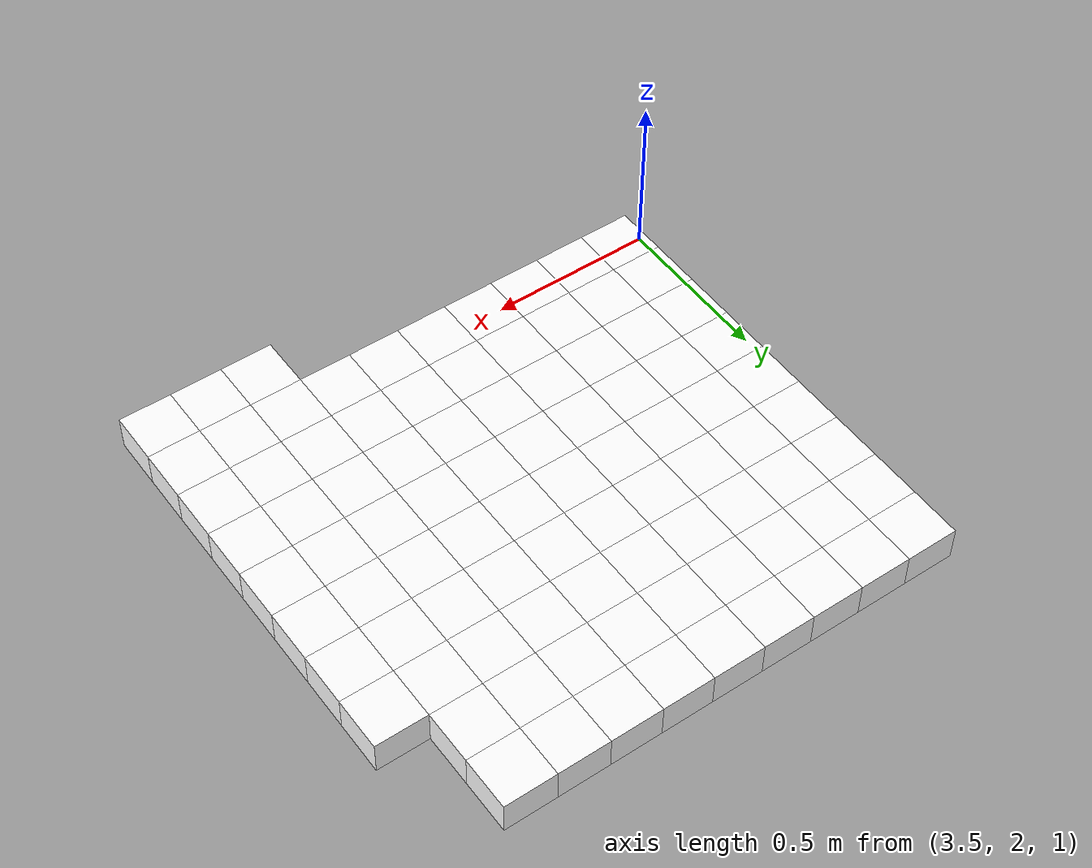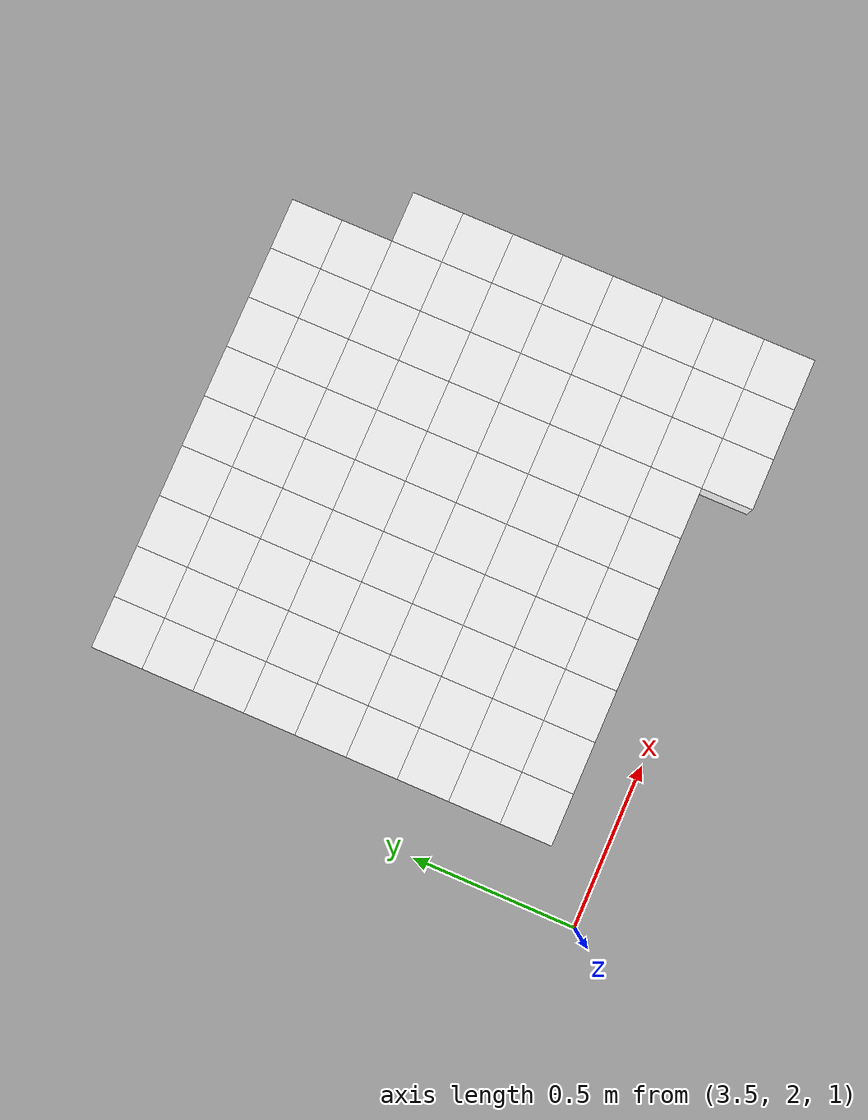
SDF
<sdf version="1.7">
 <world name="default">
  <include><uri>model://sun</uri></include>
  <model name="static_environment">
   <static>true</static>
   <link name="region_1008">
    <pose>4.825000000000003 2.0999999999999996 1.3 0.0 0.0 0.0</pose>
    <collision name="region_1008_collision">
     <geometry><box><size>0.15 0.15 0.1</size></box></geometry>
     <surface><friction><ode><mu>1.0</mu><mu2>1.0</mu2></ode></friction></surface>
    </collision>
    <visual name="region_1008_visual">
     <geometry><box><size>0.15 0.15 0.1</size></box></geometry>
     <material><ambient>1.0 1.0 1.0 1.0</ambient><diffuse>1.0 1.0 1.0 1.0</diffuse></material>
    </visual>
   </link>
   <link name="region_1009">
    <pose>4.975000000000003 2.0999999999999996 1.3 0.0 0.0 0.0</pose>
    <collision name="region_1009_collision">
     <geometry><box><size>0.15 0.15 0.1</size></box></geometry>
     <surface><friction><ode><mu>1.0</mu><mu2>1.0</mu2></ode></friction></surface>
    </collision>
    <visual name="region_1009_visual">
     <geometry><box><size>0.15 0.15 0.1</size></box></geometry>
     <material><ambient>1.0 1.0 1.0 1.0</ambient><diffuse>1.0 1.0 1.0 1.0</diffuse></material>
    </visual>
   </link>
   <link name="region_1010">
    <pose>5.1250000000000036 2.0999999999999996 1.3 0.0 0.0 0.0</pose>
    <collision name="region_1010_collision">
     <geometry><box><size>0.15 0.15 0.1</size></box></geometry>
     <surface><friction><ode><mu>1.0</mu><mu2>1.0</mu2></ode></friction></surface>
    </collision>
    <visual name="region_1010_visual">
     <geometry><box><size>0.15 0.15 0.1</size></box></geometry>
     <material><ambient>1.0 1.0 1.0 1.0</ambient><diffuse>1.0 1.0 1.0 1.0</diffuse></material>
    </visual>
   </link>
   <link name="region_1021">
    <pose>3.7750000000000004 2.2499999999999996 1.3 0.0 0.0 0.0</pose>
    <collision name="region_1021_collision">
     <geometry><box><size>0.15 0.15 0.1</size></box></geometry>
     <surface><friction><ode><mu>1.0</mu><mu2>1.0</mu2></ode></friction></surface>
    </collision>
    <visual name="region_1021_visual">
     <geometry><box><size>0.15 0.15 0.1</size></box></geometry>
     <material><ambient>1.0 1.0 1.0 1.0</ambient><diffuse>1.0 1.0 1.0 1.0</diffuse></material>
    </visual>
   </link>
   <link name="region_1022">
    <pose>3.9250000000000007 2.2499999999999996 1.3 0.0 0.0 0.0</pose>
    <collision name="region_1022_collision">
     <geometry><box><size>0.15 0.15 0.1</size></box></geometry>
     <surface><friction><ode><mu>1.0</mu><mu2>1.0</mu2></ode></friction></surface>
    </collision>
    <visual name="region_1022_visual">
     <geometry><box><size>0.15 0.15 0.1</size></box></geometry>
     <material><ambient>1.0 1.0 1.0 1.0</ambient><diffuse>1.0 1.0 1.0 1.0</diffuse></material>
    </visual>
   </link>
   <link name="region_1023">
    <pose>4.075000000000001 2.2499999999999996 1.3 0.0 0.0 0.0</pose>
    <collision name="region_1023_collision">
     <geometry><box><size>0.15 0.15 0.1</size></box></geometry>
     <surface><friction><ode><mu>1.0</mu><mu2>1.0</mu2></ode></friction></surface>
    </collision>
    <visual name="region_1023_visual">
     <geometry><box><size>0.15 0.15 0.1</size></box></geometry>
     <material><ambient>1.0 1.0 1.0 1.0</ambient><diffuse>1.0 1.0 1.0 1.0</diffuse></material>
    </visual>
   </link>
   <link name="region_1024">
    <pose>4.225000000000001 2.2499999999999996 1.3 0.0 0.0 0.0</pose>
    <collision name="region_1024_collision">
     <geometry><box><size>0.15 0.15 0.1</size></box></geometry>
     <surface><friction><ode><mu>1.0</mu><mu2>1.0</mu2></ode></friction></surface>
    </collision>
    <visual name="region_1024_visual">
     <geometry><box><size>0.15 0.15 0.1</size></box></geometry>
     <material><ambient>1.0 1.0 1.0 1.0</ambient><diffuse>1.0 1.0 1.0 1.0</diffuse></material>
    </visual>
   </link>
   <link name="region_1025">
    <pose>4.375000000000002 2.2499999999999996 1.3 0.0 0.0 0.0</pose>
    <collision name="region_1025_collision">
     <geometry><box><size>0.15 0.15 0.1</size></box></geometry>
     <surface><friction><ode><mu>1.0</mu><mu2>1.0</mu2></ode></friction></surface>
    </collision>
    <visual name="region_1025_visual">
     <geometry><box><size>0.15 0.15 0.1</size></box></geometry>
     <material><ambient>1.0 1.0 1.0 1.0</ambient><diffuse>1.0 1.0 1.0 1.0</diffuse></material>
    </visual>
   </link>
   <link name="region_1026">
    <pose>4.525000000000002 2.2499999999999996 1.3 0.0 0.0 0.0</pose>
    <collision name="region_1026_collision">
     <geometry><box><size>0.15 0.15 0.1</size></box></geometry>
     <surface><friction><ode><mu>1.0</mu><mu2>1.0</mu2></ode></friction></surface>
    </collision>
    <visual name="region_1026_visual">
     <geometry><box><size>0.15 0.15 0.1</size></box></geometry>
     <material><ambient>1.0 1.0 1.0 1.0</ambient><diffuse>1.0 1.0 1.0 1.0</diffuse></material>
    </visual>
   </link>
   <link name="region_1027">
    <pose>4.6750000000000025 2.2499999999999996 1.3 0.0 0.0 0.0</pose>
    <collision name="region_1027_collision">
     <geometry><box><size>0.15 0.15 0.1</size></box></geometry>
     <surface><friction><ode><mu>1.0</mu><mu2>1.0</mu2></ode></friction></surface>
    </collision>
    <visual name="region_1027_visual">
     <geometry><box><size>0.15 0.15 0.1</size></box></geometry>
     <material><ambient>1.0 1.0 1.0 1.0</ambient><diffuse>1.0 1.0 1.0 1.0</diffuse></material>
    </visual>
   </link>
   <link name="region_1028">
    <pose>4.825000000000003 2.2499999999999996 1.3 0.0 0.0 0.0</pose>
    <collision name="region_1028_collision">
     <geometry><box><size>0.15 0.15 0.1</size></box></geometry>
     <surface><friction><ode><mu>1.0</mu><mu2>1.0</mu2></ode></friction></surface>
    </collision>
    <visual name="region_1028_visual">
     <geometry><box><size>0.15 0.15 0.1</size></box></geometry>
     <material><ambient>1.0 1.0 1.0 1.0</ambient><diffuse>1.0 1.0 1.0 1.0</diffuse></material>
    </visual>
   </link>
   <link name="region_1029">
    <pose>4.975000000000003 2.2499999999999996 1.3 0.0 0.0 0.0</pose>
    <collision name="region_1029_collision">
     <geometry><box><size>0.15 0.15 0.1</size></box></geometry>
     <surface><friction><ode><mu>1.0</mu><mu2>1.0</mu2></ode></friction></surface>
    </collision>
    <visual name="region_1029_visual">
     <geometry><box><size>0.15 0.15 0.1</size></box></geometry>
     <material><ambient>1.0 1.0 1.0 1.0</ambient><diffuse>1.0 1.0 1.0 1.0</diffuse></material>
    </visual>
   </link>
   <link name="region_1030">
    <pose>5.1250000000000036 2.2499999999999996 1.3 0.0 0.0 0.0</pose>
    <collision name="region_1030_collision">
     <geometry><box><size>0.15 0.15 0.1</size></box></geometry>
     <surface><friction><ode><mu>1.0</mu><mu2>1.0</mu2></ode></friction></surface>
    </collision>
    <visual name="region_1030_visual">
     <geometry><box><size>0.15 0.15 0.1</size></box></geometry>
     <material><ambient>1.0 1.0 1.0 1.0</ambient><diffuse>1.0 1.0 1.0 1.0</diffuse></material>
    </visual>
   </link>
   <link name="region_1041">
    <pose>3.7750000000000004 2.3999999999999995 1.3 0.0 0.0 0.0</pose>
    <collision name="region_1041_collision">
     <geometry><box><size>0.15 0.15 0.1</size></box></geometry>
     <surface><friction><ode><mu>1.0</mu><mu2>1.0</mu2></ode></friction></surface>
    </collision>
    <visual name="region_1041_visual">
     <geometry><box><size>0.15 0.15 0.1</size></box></geometry>
     <material><ambient>1.0 1.0 1.0 1.0</ambient><diffuse>1.0 1.0 1.0 1.0</diffuse></material>
    </visual>
   </link>
   <link name="region_1042">
    <pose>3.9250000000000007 2.3999999999999995 1.3 0.0 0.0 0.0</pose>
    <collision name="region_1042_collision">
     <geometry><box><size>0.15 0.15 0.1</size></box></geometry>
     <surface><friction><ode><mu>1.0</mu><mu2>1.0</mu2></ode></friction></surface>
    </collision>
    <visual name="region_1042_visual">
     <geometry><box><size>0.15 0.15 0.1</size></box></geometry>
     <material><ambient>1.0 1.0 1.0 1.0</ambient><diffuse>1.0 1.0 1.0 1.0</diffuse></material>
    </visual>
   </link>
   <link name="region_1043">
    <pose>4.075000000000001 2.3999999999999995 1.3 0.0 0.0 0.0</pose>
    <collision name="region_1043_collision">
     <geometry><box><size>0.15 0.15 0.1</size></box></geometry>
     <surface><friction><ode><mu>1.0</mu><mu2>1.0</mu2></ode></friction></surface>
    </collision>
    <visual name="region_1043_visual">
     <geometry><box><size>0.15 0.15 0.1</size></box></geometry>
     <material><ambient>1.0 1.0 1.0 1.0</ambient><diffuse>1.0 1.0 1.0 1.0</diffuse></material>
    </visual>
   </link>
   <link name="region_1044">
    <pose>4.225000000000001 2.3999999999999995 1.3 0.0 0.0 0.0</pose>
    <collision name="region_1044_collision">
     <geometry><box><size>0.15 0.15 0.1</size></box></geometry>
     <surface><friction><ode><mu>1.0</mu><mu2>1.0</mu2></ode></friction></surface>
    </collision>
    <visual name="region_1044_visual">
     <geometry><box><size>0.15 0.15 0.1</size></box></geometry>
     <material><ambient>1.0 1.0 1.0 1.0</ambient><diffuse>1.0 1.0 1.0 1.0</diffuse></material>
    </visual>
   </link>
   <link name="region_1045">
    <pose>4.375000000000002 2.3999999999999995 1.3 0.0 0.0 0.0</pose>
    <collision name="region_1045_collision">
     <geometry><box><size>0.15 0.15 0.1</size></box></geometry>
     <surface><friction><ode><mu>1.0</mu><mu2>1.0</mu2></ode></friction></surface>
    </collision>
    <visual name="region_1045_visual">
     <geometry><box><size>0.15 0.15 0.1</size></box></geometry>
     <material><ambient>1.0 1.0 1.0 1.0</ambient><diffuse>1.0 1.0 1.0 1.0</diffuse></material>
    </visual>
   </link>
   <link name="region_1046">
    <pose>4.525000000000002 2.3999999999999995 1.3 0.0 0.0 0.0</pose>
    <collision name="region_1046_collision">
     <geometry><box><size>0.15 0.15 0.1</size></box></geometry>
     <surface><friction><ode><mu>1.0</mu><mu2>1.0</mu2></ode></friction></surface>
    </collision>
    <visual name="region_1046_visual">
     <geometry><box><size>0.15 0.15 0.1</size></box></geometry>
     <material><ambient>1.0 1.0 1.0 1.0</ambient><diffuse>1.0 1.0 1.0 1.0</diffuse></material>
    </visual>
   </link>
   <link name="region_1047">
    <pose>4.6750000000000025 2.3999999999999995 1.3 0.0 0.0 0.0</pose>
    <collision name="region_1047_collision">
     <geometry><box><size>0.15 0.15 0.1</size></box></geometry>
     <surface><friction><ode><mu>1.0</mu><mu2>1.0</mu2></ode></friction></surface>
    </collision>
    <visual name="region_1047_visual">
     <geometry><box><size>0.15 0.15 0.1</size></box></geometry>
     <material><ambient>1.0 1.0 1.0 1.0</ambient><diffuse>1.0 1.0 1.0 1.0</diffuse></material>
    </visual>
   </link>
   <link name="region_1048">
    <pose>4.825000000000003 2.3999999999999995 1.3 0.0 0.0 0.0</pose>
    <collision name="region_1048_collision">
     <geometry><box><size>0.15 0.15 0.1</size></box></geometry>
     <surface><friction><ode><mu>1.0</mu><mu2>1.0</mu2></ode></friction></surface>
    </collision>
    <visual name="region_1048_visual">
     <geometry><box><size>0.15 0.15 0.1</size></box></geometry>
     <material><ambient>1.0 1.0 1.0 1.0</ambient><diffuse>1.0 1.0 1.0 1.0</diffuse></material>
    </visual>
   </link>
   <link name="region_1049">
    <pose>4.975000000000003 2.3999999999999995 1.3 0.0 0.0 0.0</pose>
    <collision name="region_1049_collision">
     <geometry><box><size>0.15 0.15 0.1</size></box></geometry>
     <surface><friction><ode><mu>1.0</mu><mu2>1.0</mu2></ode></friction></surface>
    </collision>
    <visual name="region_1049_visual">
     <geometry><box><size>0.15 0.15 0.1</size></box></geometry>
     <material><ambient>1.0 1.0 1.0 1.0</ambient><diffuse>1.0 1.0 1.0 1.0</diffuse></material>
    </visual>
   </link>
   <link name="region_1050">
    <pose>5.1250000000000036 2.3999999999999995 1.3 0.0 0.0 0.0</pose>
    <collision name="region_1050_collision">
     <geometry><box><size>0.15 0.15 0.1</size></box></geometry>
     <surface><friction><ode><mu>1.0</mu><mu2>1.0</mu2></ode></friction></surface>
    </collision>
    <visual name="region_1050_visual">
     <geometry><box><size>0.15 0.15 0.1</size></box></geometry>
     <material><ambient>1.0 1.0 1.0 1.0</ambient><diffuse>1.0 1.0 1.0 1.0</diffuse></material>
    </visual>
   </link>
   <link name="region_1061">
    <pose>3.7750000000000004 2.5499999999999994 1.3 0.0 0.0 0.0</pose>
    <collision name="region_1061_collision">
     <geometry><box><size>0.15 0.15 0.1</size></box></geometry>
     <surface><friction><ode><mu>1.0</mu><mu2>1.0</mu2></ode></friction></surface>
    </collision>
    <visual name="region_1061_visual">
     <geometry><box><size>0.15 0.15 0.1</size></box></geometry>
     <material><ambient>1.0 1.0 1.0 1.0</ambient><diffuse>1.0 1.0 1.0 1.0</diffuse></material>
    </visual>
   </link>
   <link name="region_1062">
    <pose>3.9250000000000007 2.5499999999999994 1.3 0.0 0.0 0.0</pose>
    <collision name="region_1062_collision">
     <geometry><box><size>0.15 0.15 0.1</size></box></geometry>
     <surface><friction><ode><mu>1.0</mu><mu2>1.0</mu2></ode></friction></surface>
    </collision>
    <visual name="region_1062_visual">
     <geometry><box><size>0.15 0.15 0.1</size></box></geometry>
     <material><ambient>1.0 1.0 1.0 1.0</ambient><diffuse>1.0 1.0 1.0 1.0</diffuse></material>
    </visual>
   </link>
   <link name="region_1063">
    <pose>4.075000000000001 2.5499999999999994 1.3 0.0 0.0 0.0</pose>
    <collision name="region_1063_collision">
     <geometry><box><size>0.15 0.15 0.1</size></box></geometry>
     <surface><friction><ode><mu>1.0</mu><mu2>1.0</mu2></ode></friction></surface>
    </collision>
    <visual name="region_1063_visual">
     <geometry><box><size>0.15 0.15 0.1</size></box></geometry>
     <material><ambient>1.0 1.0 1.0 1.0</ambient><diffuse>1.0 1.0 1.0 1.0</diffuse></material>
    </visual>
   </link>
   <link name="region_1064">
    <pose>4.225000000000001 2.5499999999999994 1.3 0.0 0.0 0.0</pose>
    <collision name="region_1064_collision">
     <geometry><box><size>0.15 0.15 0.1</size></box></geometry>
     <surface><friction><ode><mu>1.0</mu><mu2>1.0</mu2></ode></friction></surface>
    </collision>
    <visual name="region_1064_visual">
     <geometry><box><size>0.15 0.15 0.1</size></box></geometry>
     <material><ambient>1.0 1.0 1.0 1.0</ambient><diffuse>1.0 1.0 1.0 1.0</diffuse></material>
    </visual>
   </link>
   <link name="region_1065">
    <pose>4.375000000000002 2.5499999999999994 1.3 0.0 0.0 0.0</pose>
    <collision name="region_1065_collision">
     <geometry><box><size>0.15 0.15 0.1</size></box></geometry>
     <surface><friction><ode><mu>1.0</mu><mu2>1.0</mu2></ode></friction></surface>
    </collision>
    <visual name="region_1065_visual">
     <geometry><box><size>0.15 0.15 0.1</size></box></geometry>
     <material><ambient>1.0 1.0 1.0 1.0</ambient><diffuse>1.0 1.0 1.0 1.0</diffuse></material>
    </visual>
   </link>
   <link name="region_1066">
    <pose>4.525000000000002 2.5499999999999994 1.3 0.0 0.0 0.0</pose>
    <collision name="region_1066_collision">
     <geometry><box><size>0.15 0.15 0.1</size></box></geometry>
     <surface><friction><ode><mu>1.0</mu><mu2>1.0</mu2></ode></friction></surface>
    </collision>
    <visual name="region_1066_visual">
     <geometry><box><size>0.15 0.15 0.1</size></box></geometry>
     <material><ambient>1.0 1.0 1.0 1.0</ambient><diffuse>1.0 1.0 1.0 1.0</diffuse></material>
    </visual>
   </link>
   <link name="region_1067">
    <pose>4.6750000000000025 2.5499999999999994 1.3 0.0 0.0 0.0</pose>
    <collision name="region_1067_collision">
     <geometry><box><size>0.15 0.15 0.1</size></box></geometry>
     <surface><friction><ode><mu>1.0</mu><mu2>1.0</mu2></ode></friction></surface>
    </collision>
    <visual name="region_1067_visual">
     <geometry><box><size>0.15 0.15 0.1</size></box></geometry>
     <material><ambient>1.0 1.0 1.0 1.0</ambient><diffuse>1.0 1.0 1.0 1.0</diffuse></material>
    </visual>
   </link>
   <link name="region_1068">
    <pose>4.825000000000003 2.5499999999999994 1.3 0.0 0.0 0.0</pose>
    <collision name="region_1068_collision">
     <geometry><box><size>0.15 0.15 0.1</size></box></geometry>
     <surface><friction><ode><mu>1.0</mu><mu2>1.0</mu2></ode></friction></surface>
    </collision>
    <visual name="region_1068_visual">
     <geometry><box><size>0.15 0.15 0.1</size></box></geometry>
     <material><ambient>1.0 1.0 1.0 1.0</ambient><diffuse>1.0 1.0 1.0 1.0</diffuse></material>
    </visual>
   </link>
   <link name="region_1069">
    <pose>4.975000000000003 2.5499999999999994 1.3 0.0 0.0 0.0</pose>
    <collision name="region_1069_collision">
     <geometry><box><size>0.15 0.15 0.1</size></box></geometry>
     <surface><friction><ode><mu>1.0</mu><mu2>1.0</mu2></ode></friction></surface>
    </collision>
    <visual name="region_1069_visual">
     <geometry><box><size>0.15 0.15 0.1</size></box></geometry>
     <material><ambient>1.0 1.0 1.0 1.0</ambient><diffuse>1.0 1.0 1.0 1.0</diffuse></material>
    </visual>
   </link>
   <link name="region_1070">
    <pose>5.1250000000000036 2.5499999999999994 1.3 0.0 0.0 0.0</pose>
    <collision name="region_1070_collision">
     <geometry><box><size>0.15 0.15 0.1</size></box></geometry>
     <surface><friction><ode><mu>1.0</mu><mu2>1.0</mu2></ode></friction></surface>
    </collision>
    <visual name="region_1070_visual">
     <geometry><box><size>0.15 0.15 0.1</size></box></geometry>
     <material><ambient>1.0 1.0 1.0 1.0</ambient><diffuse>1.0 1.0 1.0 1.0</diffuse></material>
    </visual>
   </link>
   <link name="region_1081">
    <pose>3.7750000000000004 2.6999999999999997 1.3 0.0 0.0 0.0</pose>
    <collision name="region_1081_collision">
     <geometry><box><size>0.15 0.15 0.1</size></box></geometry>
     <surface><friction><ode><mu>1.0</mu><mu2>1.0</mu2></ode></friction></surface>
    </collision>
    <visual name="region_1081_visual">
     <geometry><box><size>0.15 0.15 0.1</size></box></geometry>
     <material><ambient>1.0 1.0 1.0 1.0</ambient><diffuse>1.0 1.0 1.0 1.0</diffuse></material>
    </visual>
   </link>
   <link name="region_1082">
    <pose>3.9250000000000007 2.6999999999999997 1.3 0.0 0.0 0.0</pose>
    <collision name="region_1082_collision">
     <geometry><box><size>0.15 0.15 0.1</size></box></geometry>
     <surface><friction><ode><mu>1.0</mu><mu2>1.0</mu2></ode></friction></surface>
    </collision>
    <visual name="region_1082_visual">
     <geometry><box><size>0.15 0.15 0.1</size></box></geometry>
     <material><ambient>1.0 1.0 1.0 1.0</ambient><diffuse>1.0 1.0 1.0 1.0</diffuse></material>
    </visual>
   </link>
   <link name="region_1083">
    <pose>4.075000000000001 2.6999999999999997 1.3 0.0 0.0 0.0</pose>
    <collision name="region_1083_collision">
     <geometry><box><size>0.15 0.15 0.1</size></box></geometry>
     <surface><friction><ode><mu>1.0</mu><mu2>1.0</mu2></ode></friction></surface>
    </collision>
    <visual name="region_1083_visual">
     <geometry><box><size>0.15 0.15 0.1</size></box></geometry>
     <material><ambient>1.0 1.0 1.0 1.0</ambient><diffuse>1.0 1.0 1.0 1.0</diffuse></material>
    </visual>
   </link>
   <link name="region_1084">
    <pose>4.225000000000001 2.6999999999999997 1.3 0.0 0.0 0.0</pose>
    <collision name="region_1084_collision">
     <geometry><box><size>0.15 0.15 0.1</size></box></geometry>
     <surface><friction><ode><mu>1.0</mu><mu2>1.0</mu2></ode></friction></surface>
    </collision>
    <visual name="region_1084_visual">
     <geometry><box><size>0.15 0.15 0.1</size></box></geometry>
     <material><ambient>1.0 1.0 1.0 1.0</ambient><diffuse>1.0 1.0 1.0 1.0</diffuse></material>
    </visual>
   </link>
   <link name="region_1085">
    <pose>4.375000000000002 2.6999999999999997 1.3 0.0 0.0 0.0</pose>
    <collision name="region_1085_collision">
     <geometry><box><size>0.15 0.15 0.1</size></box></geometry>
     <surface><friction><ode><mu>1.0</mu><mu2>1.0</mu2></ode></friction></surface>
    </collision>
    <visual name="region_1085_visual">
     <geometry><box><size>0.15 0.15 0.1</size></box></geometry>
     <material><ambient>1.0 1.0 1.0 1.0</ambient><diffuse>1.0 1.0 1.0 1.0</diffuse></material>
    </visual>
   </link>
   <link name="region_1086">
    <pose>4.525000000000002 2.6999999999999997 1.3 0.0 0.0 0.0</pose>
    <collision name="region_1086_collision">
     <geometry><box><size>0.15 0.15 0.1</size></box></geometry>
     <surface><friction><ode><mu>1.0</mu><mu2>1.0</mu2></ode></friction></surface>
    </collision>
    <visual name="region_1086_visual">
     <geometry><box><size>0.15 0.15 0.1</size></box></geometry>
     <material><ambient>1.0 1.0 1.0 1.0</ambient><diffuse>1.0 1.0 1.0 1.0</diffuse></material>
    </visual>
   </link>
   <link name="region_1087">
    <pose>4.6750000000000025 2.6999999999999997 1.3 0.0 0.0 0.0</pose>
    <collision name="region_1087_collision">
     <geometry><box><size>0.15 0.15 0.1</size></box></geometry>
     <surface><friction><ode><mu>1.0</mu><mu2>1.0</mu2></ode></friction></surface>
    </collision>
    <visual name="region_1087_visual">
     <geometry><box><size>0.15 0.15 0.1</size></box></geometry>
     <material><ambient>1.0 1.0 1.0 1.0</ambient><diffuse>1.0 1.0 1.0 1.0</diffuse></material>
    </visual>
   </link>
   <link name="region_1088">
    <pose>4.825000000000003 2.6999999999999997 1.3 0.0 0.0 0.0</pose>
    <collision name="region_1088_collision">
     <geometry><box><size>0.15 0.15 0.1</size></box></geometry>
     <surface><friction><ode><mu>1.0</mu><mu2>1.0</mu2></ode></friction></surface>
    </collision>
    <visual name="region_1088_visual">
     <geometry><box><size>0.15 0.15 0.1</size></box></geometry>
     <material><ambient>1.0 1.0 1.0 1.0</ambient><diffuse>1.0 1.0 1.0 1.0</diffuse></material>
    </visual>
   </link>
   <link name="region_1089">
    <pose>4.975000000000003 2.6999999999999997 1.3 0.0 0.0 0.0</pose>
    <collision name="region_1089_collision">
     <geometry><box><size>0.15 0.15 0.1</size></box></geometry>
     <surface><friction><ode><mu>1.0</mu><mu2>1.0</mu2></ode></friction></surface>
    </collision>
    <visual name="region_1089_visual">
     <geometry><box><size>0.15 0.15 0.1</size></box></geometry>
     <material><ambient>1.0 1.0 1.0 1.0</ambient><diffuse>1.0 1.0 1.0 1.0</diffuse></material>
    </visual>
   </link>
   <link name="region_1090">
    <pose>5.1250000000000036 2.6999999999999997 1.3 0.0 0.0 0.0</pose>
    <collision name="region_1090_collision">
     <geometry><box><size>0.15 0.15 0.1</size></box></geometry>
     <surface><friction><ode><mu>1.0</mu><mu2>1.0</mu2></ode></friction></surface>
    </collision>
    <visual name="region_1090_visual">
     <geometry><box><size>0.15 0.15 0.1</size></box></geometry>
     <material><ambient>1.0 1.0 1.0 1.0</ambient><diffuse>1.0 1.0 1.0 1.0</diffuse></material>
    </visual>
   </link>
   <link name="region_1101">
    <pose>3.7750000000000004 2.8499999999999996 1.3 0.0 0.0 0.0</pose>
    <collision name="region_1101_collision">
     <geometry><box><size>0.15 0.15 0.1</size></box></geometry>
     <surface><friction><ode><mu>1.0</mu><mu2>1.0</mu2></ode></friction></surface>
    </collision>
    <visual name="region_1101_visual">
     <geometry><box><size>0.15 0.15 0.1</size></box></geometry>
     <material><ambient>1.0 1.0 1.0 1.0</ambient><diffuse>1.0 1.0 1.0 1.0</diffuse></material>
    </visual>
   </link>
   <link name="region_1102">
    <pose>3.9250000000000007 2.8499999999999996 1.3 0.0 0.0 0.0</pose>
    <collision name="region_1102_collision">
     <geometry><box><size>0.15 0.15 0.1</size></box></geometry>
     <surface><friction><ode><mu>1.0</mu><mu2>1.0</mu2></ode></friction></surface>
    </collision>
    <visual name="region_1102_visual">
     <geometry><box><size>0.15 0.15 0.1</size></box></geometry>
     <material><ambient>1.0 1.0 1.0 1.0</ambient><diffuse>1.0 1.0 1.0 1.0</diffuse></material>
    </visual>
   </link>
   <link name="region_1103">
    <pose>4.075000000000001 2.8499999999999996 1.3 0.0 0.0 0.0</pose>
    <collision name="region_1103_collision">
     <geometry><box><size>0.15 0.15 0.1</size></box></geometry>
     <surface><friction><ode><mu>1.0</mu><mu2>1.0</mu2></ode></friction></surface>
    </collision>
    <visual name="region_1103_visual">
     <geometry><box><size>0.15 0.15 0.1</size></box></geometry>
     <material><ambient>1.0 1.0 1.0 1.0</ambient><diffuse>1.0 1.0 1.0 1.0</diffuse></material>
    </visual>
   </link>
   <link name="region_1104">
    <pose>4.225000000000001 2.8499999999999996 1.3 0.0 0.0 0.0</pose>
    <collision name="region_1104_collision">
     <geometry><box><size>0.15 0.15 0.1</size></box></geometry>
     <surface><friction><ode><mu>1.0</mu><mu2>1.0</mu2></ode></friction></surface>
    </collision>
    <visual name="region_1104_visual">
     <geometry><box><size>0.15 0.15 0.1</size></box></geometry>
     <material><ambient>1.0 1.0 1.0 1.0</ambient><diffuse>1.0 1.0 1.0 1.0</diffuse></material>
    </visual>
   </link>
   <link name="region_1105">
    <pose>4.375000000000002 2.8499999999999996 1.3 0.0 0.0 0.0</pose>
    <collision name="region_1105_collision">
     <geometry><box><size>0.15 0.15 0.1</size></box></geometry>
     <surface><friction><ode><mu>1.0</mu><mu2>1.0</mu2></ode></friction></surface>
    </collision>
    <visual name="region_1105_visual">
     <geometry><box><size>0.15 0.15 0.1</size></box></geometry>
     <material><ambient>1.0 1.0 1.0 1.0</ambient><diffuse>1.0 1.0 1.0 1.0</diffuse></material>
    </visual>
   </link>
   <link name="region_1106">
    <pose>4.525000000000002 2.8499999999999996 1.3 0.0 0.0 0.0</pose>
    <collision name="region_1106_collision">
     <geometry><box><size>0.15 0.15 0.1</size></box></geometry>
     <surface><friction><ode><mu>1.0</mu><mu2>1.0</mu2></ode></friction></surface>
    </collision>
    <visual name="region_1106_visual">
     <geometry><box><size>0.15 0.15 0.1</size></box></geometry>
     <material><ambient>1.0 1.0 1.0 1.0</ambient><diffuse>1.0 1.0 1.0 1.0</diffuse></material>
    </visual>
   </link>
   <link name="region_1107">
    <pose>4.6750000000000025 2.8499999999999996 1.3 0.0 0.0 0.0</pose>
    <collision name="region_1107_collision">
     <geometry><box><size>0.15 0.15 0.1</size></box></geometry>
     <surface><friction><ode><mu>1.0</mu><mu2>1.0</mu2></ode></friction></surface>
    </collision>
    <visual name="region_1107_visual">
     <geometry><box><size>0.15 0.15 0.1</size></box></geometry>
     <material><ambient>1.0 1.0 1.0 1.0</ambient><diffuse>1.0 1.0 1.0 1.0</diffuse></material>
    </visual>
   </link>
   <link name="region_1108">
    <pose>4.825000000000003 2.8499999999999996 1.3 0.0 0.0 0.0</pose>
    <collision name="region_1108_collision">
     <geometry><box><size>0.15 0.15 0.1</size></box></geometry>
     <surface><friction><ode><mu>1.0</mu><mu2>1.0</mu2></ode></friction></surface>
    </collision>
    <visual name="region_1108_visual">
     <geometry><box><size>0.15 0.15 0.1</size></box></geometry>
     <material><ambient>1.0 1.0 1.0 1.0</ambient><diffuse>1.0 1.0 1.0 1.0</diffuse></material>
    </visual>
   </link>
   <link name="region_1109">
    <pose>4.975000000000003 2.8499999999999996 1.3 0.0 0.0 0.0</pose>
    <collision name="region_1109_collision">
     <geometry><box><size>0.15 0.15 0.1</size></box></geometry>
     <surface><friction><ode><mu>1.0</mu><mu2>1.0</mu2></ode></friction></surface>
    </collision>
    <visual name="region_1109_visual">
     <geometry><box><size>0.15 0.15 0.1</size></box></geometry>
     <material><ambient>1.0 1.0 1.0 1.0</ambient><diffuse>1.0 1.0 1.0 1.0</diffuse></material>
    </visual>
   </link>
   <link name="region_1110">
    <pose>5.1250000000000036 2.8499999999999996 1.3 0.0 0.0 0.0</pose>
    <collision name="region_1110_collision">
     <geometry><box><size>0.15 0.15 0.1</size></box></geometry>
     <surface><friction><ode><mu>1.0</mu><mu2>1.0</mu2></ode></friction></surface>
    </collision>
    <visual name="region_1110_visual">
     <geometry><box><size>0.15 0.15 0.1</size></box></geometry>
     <material><ambient>1.0 1.0 1.0 1.0</ambient><diffuse>1.0 1.0 1.0 1.0</diffuse></material>
    </visual>
   </link>
   <link name="region_1121">
    <pose>3.7750000000000004 2.9999999999999996 1.3 0.0 0.0 0.0</pose>
    <collision name="region_1121_collision">
     <geometry><box><size>0.15 0.15 0.1</size></box></geometry>
     <surface><friction><ode><mu>1.0</mu><mu2>1.0</mu2></ode></friction></surface>
    </collision>
    <visual name="region_1121_visual">
     <geometry><box><size>0.15 0.15 0.1</size></box></geometry>
     <material><ambient>1.0 1.0 1.0 1.0</ambient><diffuse>1.0 1.0 1.0 1.0</diffuse></material>
    </visual>
   </link>
   <link name="region_1122">
    <pose>3.9250000000000007 2.9999999999999996 1.3 0.0 0.0 0.0</pose>
    <collision name="region_1122_collision">
     <geometry><box><size>0.15 0.15 0.1</size></box></geometry>
     <surface><friction><ode><mu>1.0</mu><mu2>1.0</mu2></ode></friction></surface>
    </collision>
    <visual name="region_1122_visual">
     <geometry><box><size>0.15 0.15 0.1</size></box></geometry>
     <material><ambient>1.0 1.0 1.0 1.0</ambient><diffuse>1.0 1.0 1.0 1.0</diffuse></material>
    </visual>
   </link>
   <link name="region_1123">
    <pose>4.075000000000001 2.9999999999999996 1.3 0.0 0.0 0.0</pose>
    <collision name="region_1123_collision">
     <geometry><box><size>0.15 0.15 0.1</size></box></geometry>
     <surface><friction><ode><mu>1.0</mu><mu2>1.0</mu2></ode></friction></surface>
    </collision>
    <visual name="region_1123_visual">
     <geometry><box><size>0.15 0.15 0.1</size></box></geometry>
     <material><ambient>1.0 1.0 1.0 1.0</ambient><diffuse>1.0 1.0 1.0 1.0</diffuse></material>
    </visual>
   </link>
   <link name="region_1124">
    <pose>4.225000000000001 2.9999999999999996 1.3 0.0 0.0 0.0</pose>
    <collision name="region_1124_collision">
     <geometry><box><size>0.15 0.15 0.1</size></box></geometry>
     <surface><friction><ode><mu>1.0</mu><mu2>1.0</mu2></ode></friction></surface>
    </collision>
    <visual name="region_1124_visual">
     <geometry><box><size>0.15 0.15 0.1</size></box></geometry>
     <material><ambient>1.0 1.0 1.0 1.0</ambient><diffuse>1.0 1.0 1.0 1.0</diffuse></material>
    </visual>
   </link>
   <link name="region_1125">
    <pose>4.375000000000002 2.9999999999999996 1.3 0.0 0.0 0.0</pose>
    <collision name="region_1125_collision">
     <geometry><box><size>0.15 0.15 0.1</size></box></geometry>
     <surface><friction><ode><mu>1.0</mu><mu2>1.0</mu2></ode></friction></surface>
    </collision>
    <visual name="region_1125_visual">
     <geometry><box><size>0.15 0.15 0.1</size></box></geometry>
     <material><ambient>1.0 1.0 1.0 1.0</ambient><diffuse>1.0 1.0 1.0 1.0</diffuse></material>
    </visual>
   </link>
   <link name="region_1126">
    <pose>4.525000000000002 2.9999999999999996 1.3 0.0 0.0 0.0</pose>
    <collision name="region_1126_collision">
     <geometry><box><size>0.15 0.15 0.1</size></box></geometry>
     <surface><friction><ode><mu>1.0</mu><mu2>1.0</mu2></ode></friction></surface>
    </collision>
    <visual name="region_1126_visual">
     <geometry><box><size>0.15 0.15 0.1</size></box></geometry>
     <material><ambient>1.0 1.0 1.0 1.0</ambient><diffuse>1.0 1.0 1.0 1.0</diffuse></material>
    </visual>
   </link>
   <link name="region_1127">
    <pose>4.6750000000000025 2.9999999999999996 1.3 0.0 0.0 0.0</pose>
    <collision name="region_1127_collision">
     <geometry><box><size>0.15 0.15 0.1</size></box></geometry>
     <surface><friction><ode><mu>1.0</mu><mu2>1.0</mu2></ode></friction></surface>
    </collision>
    <visual name="region_1127_visual">
     <geometry><box><size>0.15 0.15 0.1</size></box></geometry>
     <material><ambient>1.0 1.0 1.0 1.0</ambient><diffuse>1.0 1.0 1.0 1.0</diffuse></material>
    </visual>
   </link>
   <link name="region_1128">
    <pose>4.825000000000003 2.9999999999999996 1.3 0.0 0.0 0.0</pose>
    <collision name="region_1128_collision">
     <geometry><box><size>0.15 0.15 0.1</size></box></geometry>
     <surface><friction><ode><mu>1.0</mu><mu2>1.0</mu2></ode></friction></surface>
    </collision>
    <visual name="region_1128_visual">
     <geometry><box><size>0.15 0.15 0.1</size></box></geometry>
     <material><ambient>1.0 1.0 1.0 1.0</ambient><diffuse>1.0 1.0 1.0 1.0</diffuse></material>
    </visual>
   </link>
   <link name="region_1129">
    <pose>4.975000000000003 2.9999999999999996 1.3 0.0 0.0 0.0</pose>
    <collision name="region_1129_collision">
     <geometry><box><size>0.15 0.15 0.1</size></box></geometry>
     <surface><friction><ode><mu>1.0</mu><mu2>1.0</mu2></ode></friction></surface>
    </collision>
    <visual name="region_1129_visual">
     <geometry><box><size>0.15 0.15 0.1</size></box></geometry>
     <material><ambient>1.0 1.0 1.0 1.0</ambient><diffuse>1.0 1.0 1.0 1.0</diffuse></material>
    </visual>
   </link>
   <link name="region_1130">
    <pose>5.1250000000000036 2.9999999999999996 1.3 0.0 0.0 0.0</pose>
    <collision name="region_1130_collision">
     <geometry><box><size>0.15 0.15 0.1</size></box></geometry>
     <surface><friction><ode><mu>1.0</mu><mu2>1.0</mu2></ode></friction></surface>
    </collision>
    <visual name="region_1130_visual">
     <geometry><box><size>0.15 0.15 0.1</size></box></geometry>
     <material><ambient>1.0 1.0 1.0 1.0</ambient><diffuse>1.0 1.0 1.0 1.0</diffuse></material>
    </visual>
   </link>
   <link name="region_1141">
    <pose>3.7750000000000004 3.1499999999999995 1.3 0.0 0.0 0.0</pose>
    <collision name="region_1141_collision">
     <geometry><box><size>0.15 0.15 0.1</size></box></geometry>
     <surface><friction><ode><mu>1.0</mu><mu2>1.0</mu2></ode></friction></surface>
    </collision>
    <visual name="region_1141_visual">
     <geometry><box><size>0.15 0.15 0.1</size></box></geometry>
     <material><ambient>1.0 1.0 1.0 1.0</ambient><diffuse>1.0 1.0 1.0 1.0</diffuse></material>
    </visual>
   </link>
   <link name="region_1142">
    <pose>3.9250000000000007 3.1499999999999995 1.3 0.0 0.0 0.0</pose>
    <collision name="region_1142_collision">
     <geometry><box><size>0.15 0.15 0.1</size></box></geometry>
     <surface><friction><ode><mu>1.0</mu><mu2>1.0</mu2></ode></friction></surface>
    </collision>
    <visual name="region_1142_visual">
     <geometry><box><size>0.15 0.15 0.1</size></box></geometry>
     <material><ambient>1.0 1.0 1.0 1.0</ambient><diffuse>1.0 1.0 1.0 1.0</diffuse></material>
    </visual>
   </link>
   <link name="region_1143">
    <pose>4.075000000000001 3.1499999999999995 1.3 0.0 0.0 0.0</pose>
    <collision name="region_1143_collision">
     <geometry><box><size>0.15 0.15 0.1</size></box></geometry>
     <surface><friction><ode><mu>1.0</mu><mu2>1.0</mu2></ode></friction></surface>
    </collision>
    <visual name="region_1143_visual">
     <geometry><box><size>0.15 0.15 0.1</size></box></geometry>
     <material><ambient>1.0 1.0 1.0 1.0</ambient><diffuse>1.0 1.0 1.0 1.0</diffuse></material>
    </visual>
   </link>
   <link name="region_1144">
    <pose>4.225000000000001 3.1499999999999995 1.3 0.0 0.0 0.0</pose>
    <collision name="region_1144_collision">
     <geometry><box><size>0.15 0.15 0.1</size></box></geometry>
     <surface><friction><ode><mu>1.0</mu><mu2>1.0</mu2></ode></friction></surface>
    </collision>
    <visual name="region_1144_visual">
     <geometry><box><size>0.15 0.15 0.1</size></box></geometry>
     <material><ambient>1.0 1.0 1.0 1.0</ambient><diffuse>1.0 1.0 1.0 1.0</diffuse></material>
    </visual>
   </link>
   <link name="region_1145">
    <pose>4.375000000000002 3.1499999999999995 1.3 0.0 0.0 0.0</pose>
    <collision name="region_1145_collision">
     <geometry><box><size>0.15 0.15 0.1</size></box></geometry>
     <surface><friction><ode><mu>1.0</mu><mu2>1.0</mu2></ode></friction></surface>
    </collision>
    <visual name="region_1145_visual">
     <geometry><box><size>0.15 0.15 0.1</size></box></geometry>
     <material><ambient>1.0 1.0 1.0 1.0</ambient><diffuse>1.0 1.0 1.0 1.0</diffuse></material>
    </visual>
   </link>
   <link name="region_1146">
    <pose>4.525000000000002 3.1499999999999995 1.3 0.0 0.0 0.0</pose>
    <collision name="region_1146_collision">
     <geometry><box><size>0.15 0.15 0.1</size></box></geometry>
     <surface><friction><ode><mu>1.0</mu><mu2>1.0</mu2></ode></friction></surface>
    </collision>
    <visual name="region_1146_visual">
     <geometry><box><size>0.15 0.15 0.1</size></box></geometry>
     <material><ambient>1.0 1.0 1.0 1.0</ambient><diffuse>1.0 1.0 1.0 1.0</diffuse></material>
    </visual>
   </link>
   <link name="region_1147">
    <pose>4.6750000000000025 3.1499999999999995 1.3 0.0 0.0 0.0</pose>
    <collision name="region_1147_collision">
     <geometry><box><size>0.15 0.15 0.1</size></box></geometry>
     <surface><friction><ode><mu>1.0</mu><mu2>1.0</mu2></ode></friction></surface>
    </collision>
    <visual name="region_1147_visual">
     <geometry><box><size>0.15 0.15 0.1</size></box></geometry>
     <material><ambient>1.0 1.0 1.0 1.0</ambient><diffuse>1.0 1.0 1.0 1.0</diffuse></material>
    </visual>
   </link>
   <link name="region_1148">
    <pose>4.825000000000003 3.1499999999999995 1.3 0.0 0.0 0.0</pose>
    <collision name="region_1148_collision">
     <geometry><box><size>0.15 0.15 0.1</size></box></geometry>
     <surface><friction><ode><mu>1.0</mu><mu2>1.0</mu2></ode></friction></surface>
    </collision>
    <visual name="region_1148_visual">
     <geometry><box><size>0.15 0.15 0.1</size></box></geometry>
     <material><ambient>1.0 1.0 1.0 1.0</ambient><diffuse>1.0 1.0 1.0 1.0</diffuse></material>
    </visual>
   </link>
   <link name="region_1149">
    <pose>4.975000000000003 3.1499999999999995 1.3 0.0 0.0 0.0</pose>
    <collision name="region_1149_collision">
     <geometry><box><size>0.15 0.15 0.1</size></box></geometry>
     <surface><friction><ode><mu>1.0</mu><mu2>1.0</mu2></ode></friction></surface>
    </collision>
    <visual name="region_1149_visual">
     <geometry><box><size>0.15 0.15 0.1</size></box></geometry>
     <material><ambient>1.0 1.0 1.0 1.0</ambient><diffuse>1.0 1.0 1.0 1.0</diffuse></material>
    </visual>
   </link>
   <link name="region_1150">
    <pose>5.1250000000000036 3.1499999999999995 1.3 0.0 0.0 0.0</pose>
    <collision name="region_1150_collision">
     <geometry><box><size>0.15 0.15 0.1</size></box></geometry>
     <surface><friction><ode><mu>1.0</mu><mu2>1.0</mu2></ode></friction></surface>
    </collision>
    <visual name="region_1150_visual">
     <geometry><box><size>0.15 0.15 0.1</size></box></geometry>
     <material><ambient>1.0 1.0 1.0 1.0</ambient><diffuse>1.0 1.0 1.0 1.0</diffuse></material>
    </visual>
   </link>
   <link name="region_1161">
    <pose>3.7750000000000004 3.2999999999999994 1.3 0.0 0.0 0.0</pose>
    <collision name="region_1161_collision">
     <geometry><box><size>0.15 0.15 0.1</size></box></geometry>
     <surface><friction><ode><mu>1.0</mu><mu2>1.0</mu2></ode></friction></surface>
    </collision>
    <visual name="region_1161_visual">
     <geometry><box><size>0.15 0.15 0.1</size></box></geometry>
     <material><ambient>1.0 1.0 1.0 1.0</ambient><diffuse>1.0 1.0 1.0 1.0</diffuse></material>
    </visual>
   </link>
   <link name="region_1162">
    <pose>3.9250000000000007 3.2999999999999994 1.3 0.0 0.0 0.0</pose>
    <collision name="region_1162_collision">
     <geometry><box><size>0.15 0.15 0.1</size></box></geometry>
     <surface><friction><ode><mu>1.0</mu><mu2>1.0</mu2></ode></friction></surface>
    </collision>
    <visual name="region_1162_visual">
     <geometry><box><size>0.15 0.15 0.1</size></box></geometry>
     <material><ambient>1.0 1.0 1.0 1.0</ambient><diffuse>1.0 1.0 1.0 1.0</diffuse></material>
    </visual>
   </link>
   <link name="region_1163">
    <pose>4.075000000000001 3.2999999999999994 1.3 0.0 0.0 0.0</pose>
    <collision name="region_1163_collision">
     <geometry><box><size>0.15 0.15 0.1</size></box></geometry>
     <surface><friction><ode><mu>1.0</mu><mu2>1.0</mu2></ode></friction></surface>
    </collision>
    <visual name="region_1163_visual">
     <geometry><box><size>0.15 0.15 0.1</size></box></geometry>
     <material><ambient>1.0 1.0 1.0 1.0</ambient><diffuse>1.0 1.0 1.0 1.0</diffuse></material>
    </visual>
   </link>
   <link name="region_1164">
    <pose>4.225000000000001 3.2999999999999994 1.3 0.0 0.0 0.0</pose>
    <collision name="region_1164_collision">
     <geometry><box><size>0.15 0.15 0.1</size></box></geometry>
     <surface><friction><ode><mu>1.0</mu><mu2>1.0</mu2></ode></friction></surface>
    </collision>
    <visual name="region_1164_visual">
     <geometry><box><size>0.15 0.15 0.1</size></box></geometry>
     <material><ambient>1.0 1.0 1.0 1.0</ambient><diffuse>1.0 1.0 1.0 1.0</diffuse></material>
    </visual>
   </link>
   <link name="region_1165">
    <pose>4.375000000000002 3.2999999999999994 1.3 0.0 0.0 0.0</pose>
    <collision name="region_1165_collision">
     <geometry><box><size>0.15 0.15 0.1</size></box></geometry>
     <surface><friction><ode><mu>1.0</mu><mu2>1.0</mu2></ode></friction></surface>
    </collision>
    <visual name="region_1165_visual">
     <geometry><box><size>0.15 0.15 0.1</size></box></geometry>
     <material><ambient>1.0 1.0 1.0 1.0</ambient><diffuse>1.0 1.0 1.0 1.0</diffuse></material>
    </visual>
   </link>
   <link name="region_1166">
    <pose>4.525000000000002 3.2999999999999994 1.3 0.0 0.0 0.0</pose>
    <collision name="region_1166_collision">
     <geometry><box><size>0.15 0.15 0.1</size></box></geometry>
     <surface><friction><ode><mu>1.0</mu><mu2>1.0</mu2></ode></friction></surface>
    </collision>
    <visual name="region_1166_visual">
     <geometry><box><size>0.15 0.15 0.1</size></box></geometry>
     <material><ambient>1.0 1.0 1.0 1.0</ambient><diffuse>1.0 1.0 1.0 1.0</diffuse></material>
    </visual>
   </link>
   <link name="region_1167">
    <pose>4.6750000000000025 3.2999999999999994 1.3 0.0 0.0 0.0</pose>
    <collision name="region_1167_collision">
     <geometry><box><size>0.15 0.15 0.1</size></box></geometry>
     <surface><friction><ode><mu>1.0</mu><mu2>1.0</mu2></ode></friction></surface>
    </collision>
    <visual name="region_1167_visual">
     <geometry><box><size>0.15 0.15 0.1</size></box></geometry>
     <material><ambient>1.0 1.0 1.0 1.0</ambient><diffuse>1.0 1.0 1.0 1.0</diffuse></material>
    </visual>
   </link>
   <link name="region_1168">
    <pose>4.825000000000003 3.2999999999999994 1.3 0.0 0.0 0.0</pose>
    <collision name="region_1168_collision">
     <geometry><box><size>0.15 0.15 0.1</size></box></geometry>
     <surface><friction><ode><mu>1.0</mu><mu2>1.0</mu2></ode></friction></surface>
    </collision>
    <visual name="region_1168_visual">
     <geometry><box><size>0.15 0.15 0.1</size></box></geometry>
     <material><ambient>1.0 1.0 1.0 1.0</ambient><diffuse>1.0 1.0 1.0 1.0</diffuse></material>
    </visual>
   </link>
   <link name="region_1169">
    <pose>4.975000000000003 3.2999999999999994 1.3 0.0 0.0 0.0</pose>
    <collision name="region_1169_collision">
     <geometry><box><size>0.15 0.15 0.1</size></box></geometry>
     <surface><friction><ode><mu>1.0</mu><mu2>1.0</mu2></ode></friction></surface>
    </collision>
    <visual name="region_1169_visual">
     <geometry><box><size>0.15 0.15 0.1</size></box></geometry>
     <material><ambient>1.0 1.0 1.0 1.0</ambient><diffuse>1.0 1.0 1.0 1.0</diffuse></material>
    </visual>
   </link>
   <link name="region_1181">
    <pose>3.7750000000000004 3.4499999999999993 1.3 0.0 0.0 0.0</pose>
    <collision name="region_1181_collision">
     <geometry><box><size>0.15 0.15 0.1</size></box></geometry>
     <surface><friction><ode><mu>1.0</mu><mu2>1.0</mu2></ode></friction></surface>
    </collision>
    <visual name="region_1181_visual">
     <geometry><box><size>0.15 0.15 0.1</size></box></geometry>
     <material><ambient>1.0 1.0 1.0 1.0</ambient><diffuse>1.0 1.0 1.0 1.0</diffuse></material>
    </visual>
   </link>
   <link name="region_1182">
    <pose>3.9250000000000007 3.4499999999999993 1.3 0.0 0.0 0.0</pose>
    <collision name="region_1182_collision">
     <geometry><box><size>0.15 0.15 0.1</size></box></geometry>
     <surface><friction><ode><mu>1.0</mu><mu2>1.0</mu2></ode></friction></surface>
    </collision>
    <visual name="region_1182_visual">
     <geometry><box><size>0.15 0.15 0.1</size></box></geometry>
     <material><ambient>1.0 1.0 1.0 1.0</ambient><diffuse>1.0 1.0 1.0 1.0</diffuse></material>
    </visual>
   </link>
   <link name="region_1183">
    <pose>4.075000000000001 3.4499999999999993 1.3 0.0 0.0 0.0</pose>
    <collision name="region_1183_collision">
     <geometry><box><size>0.15 0.15 0.1</size></box></geometry>
     <surface><friction><ode><mu>1.0</mu><mu2>1.0</mu2></ode></friction></surface>
    </collision>
    <visual name="region_1183_visual">
     <geometry><box><size>0.15 0.15 0.1</size></box></geometry>
     <material><ambient>1.0 1.0 1.0 1.0</ambient><diffuse>1.0 1.0 1.0 1.0</diffuse></material>
    </visual>
   </link>
   <link name="region_1184">
    <pose>4.225000000000001 3.4499999999999993 1.3 0.0 0.0 0.0</pose>
    <collision name="region_1184_collision">
     <geometry><box><size>0.15 0.15 0.1</size></box></geometry>
     <surface><friction><ode><mu>1.0</mu><mu2>1.0</mu2></ode></friction></surface>
    </collision>
    <visual name="region_1184_visual">
     <geometry><box><size>0.15 0.15 0.1</size></box></geometry>
     <material><ambient>1.0 1.0 1.0 1.0</ambient><diffuse>1.0 1.0 1.0 1.0</diffuse></material>
    </visual>
   </link>
   <link name="region_1185">
    <pose>4.375000000000002 3.4499999999999993 1.3 0.0 0.0 0.0</pose>
    <collision name="region_1185_collision">
     <geometry><box><size>0.15 0.15 0.1</size></box></geometry>
     <surface><friction><ode><mu>1.0</mu><mu2>1.0</mu2></ode></friction></surface>
    </collision>
    <visual name="region_1185_visual">
     <geometry><box><size>0.15 0.15 0.1</size></box></geometry>
     <material><ambient>1.0 1.0 1.0 1.0</ambient><diffuse>1.0 1.0 1.0 1.0</diffuse></material>
    </visual>
   </link>
   <link name="region_1186">
    <pose>4.525000000000002 3.4499999999999993 1.3 0.0 0.0 0.0</pose>
    <collision name="region_1186_collision">
     <geometry><box><size>0.15 0.15 0.1</size></box></geometry>
     <surface><friction><ode><mu>1.0</mu><mu2>1.0</mu2></ode></friction></surface>
    </collision>
    <visual name="region_1186_visual">
     <geometry><box><size>0.15 0.15 0.1</size></box></geometry>
     <material><ambient>1.0 1.0 1.0 1.0</ambient><diffuse>1.0 1.0 1.0 1.0</diffuse></material>
    </visual>
   </link>
   <link name="region_1187">
    <pose>4.6750000000000025 3.4499999999999993 1.3 0.0 0.0 0.0</pose>
    <collision name="region_1187_collision">
     <geometry><box><size>0.15 0.15 0.1</size></box></geometry>
     <surface><friction><ode><mu>1.0</mu><mu2>1.0</mu2></ode></friction></surface>
    </collision>
    <visual name="region_1187_visual">
     <geometry><box><size>0.15 0.15 0.1</size></box></geometry>
     <material><ambient>1.0 1.0 1.0 1.0</ambient><diffuse>1.0 1.0 1.0 1.0</diffuse></material>
    </visual>
   </link>
   <link name="region_1188">
    <pose>4.825000000000003 3.4499999999999993 1.3 0.0 0.0 0.0</pose>
    <collision name="region_1188_collision">
     <geometry><box><size>0.15 0.15 0.1</size></box></geometry>
     <surface><friction><ode><mu>1.0</mu><mu2>1.0</mu2></ode></friction></surface>
    </collision>
    <visual name="region_1188_visual">
     <geometry><box><size>0.15 0.15 0.1</size></box></geometry>
     <material><ambient>1.0 1.0 1.0 1.0</ambient><diffuse>1.0 1.0 1.0 1.0</diffuse></material>
    </visual>
   </link>
   <link name="region_1189">
    <pose>4.975000000000003 3.4499999999999993 1.3 0.0 0.0 0.0</pose>
    <collision name="region_1189_collision">
     <geometry><box><size>0.15 0.15 0.1</size></box></geometry>
     <surface><friction><ode><mu>1.0</mu><mu2>1.0</mu2></ode></friction></surface>
    </collision>
    <visual name="region_1189_visual">
     <geometry><box><size>0.15 0.15 0.1</size></box></geometry>
     <material><ambient>1.0 1.0 1.0 1.0</ambient><diffuse>1.0 1.0 1.0 1.0</diffuse></material>
    </visual>
   </link>
  </model>
 </world>
</sdf>
